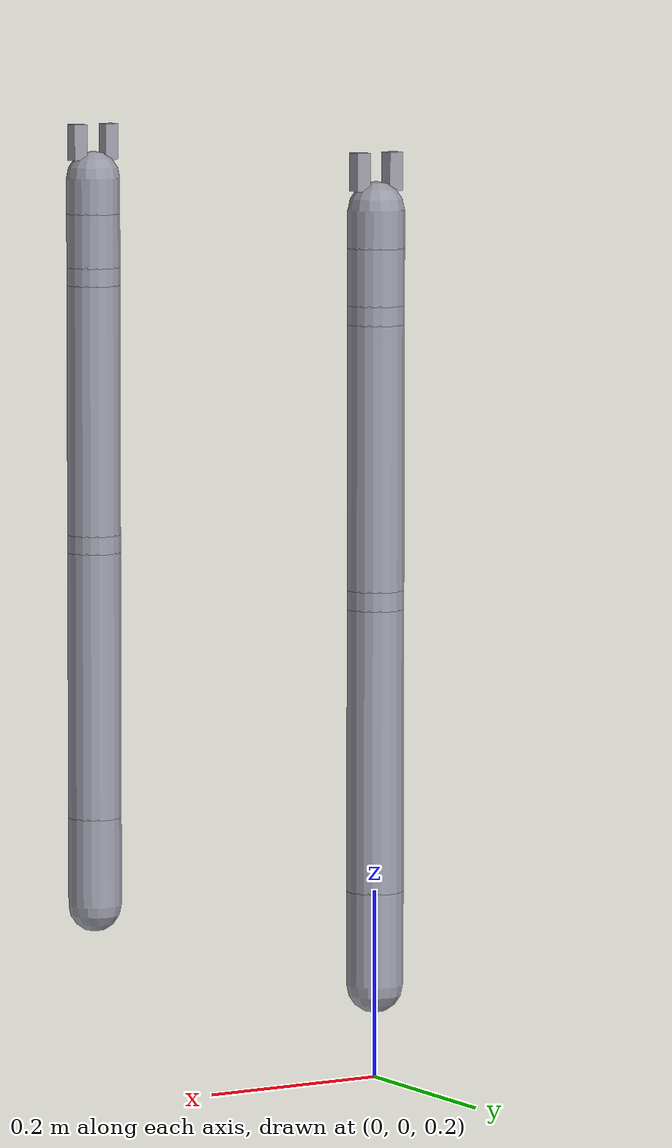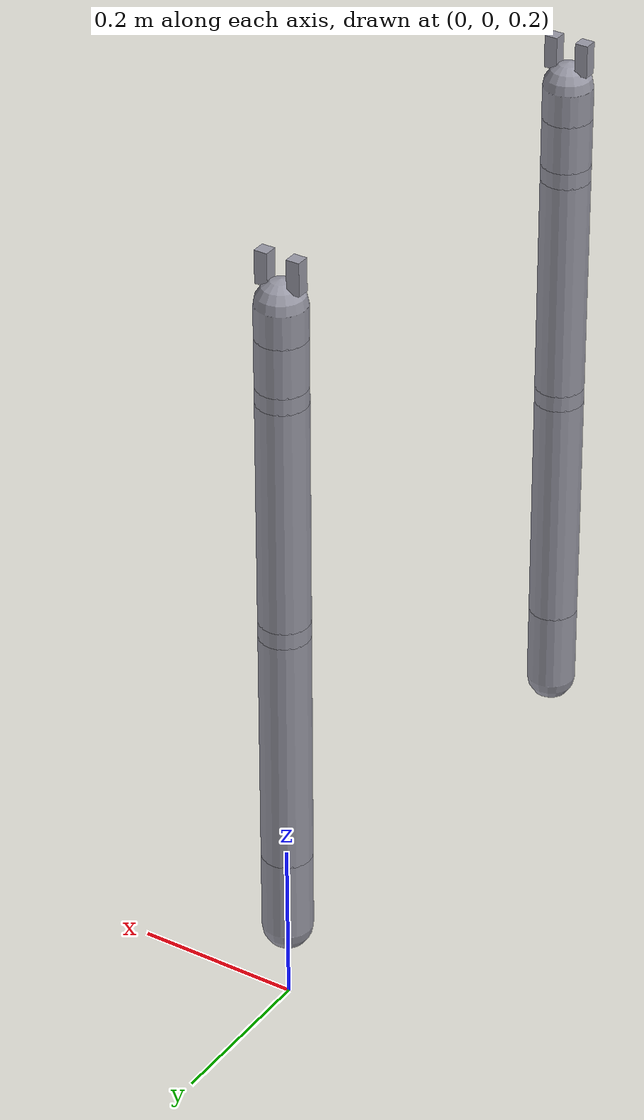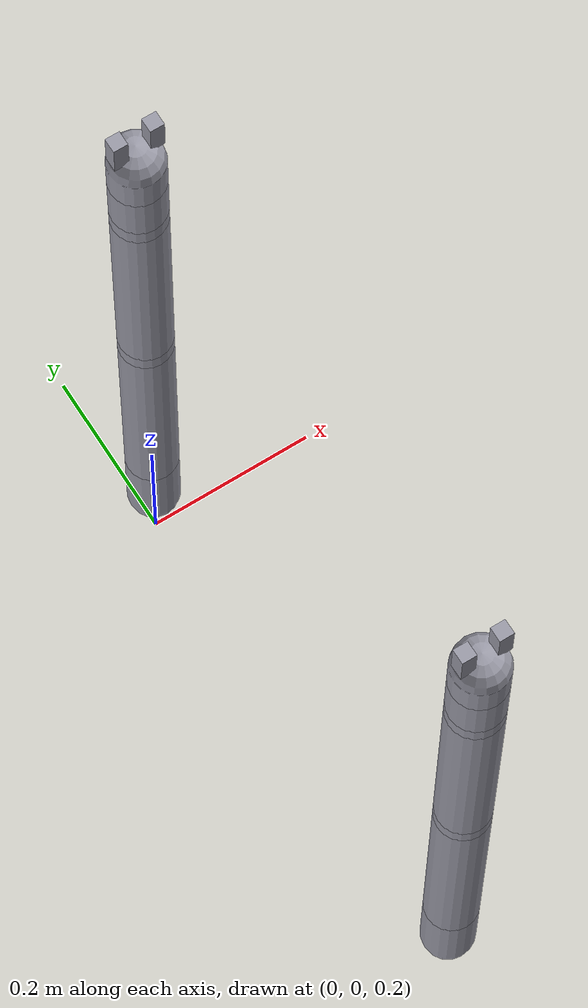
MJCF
<!-- Two independent seven-joint arms for servo and dual-controller regression checks. -->
<mujoco model="openarm test arm">
  <compiler angle="radian" />
  <option gravity="0 0 0" integrator="implicitfast" />
  <default>
    <joint type="hinge" limited="true" damping="1" />
    <geom type="capsule" size="0.03" rgba="0.6 0.6 0.65 1" />
    <position ctrllimited="true" kp="80" kv="8" />
  </default>
  <worldbody>
    <body name="openarm_right_link1" pos="0 0 0.30">
      <joint name="openarm_right_joint1" axis="0 0 1" range="-2.8 2.8" />
      <geom fromto="0 0 0 0 0 0.10" />
      <body name="openarm_right_link2" pos="0 0 0.10">
        <joint name="openarm_right_joint2" axis="0 1 0" range="-2.0 2.0" />
        <geom fromto="0 0 0 0 0 0.30" />
        <body name="openarm_right_link3" pos="0 0 0.30">
          <joint name="openarm_right_joint3" axis="0 0 1" range="-2.8 2.8" />
          <geom fromto="0 0 0 0 0 0.02" />
          <body name="openarm_right_link4" pos="0 0 0.02">
            <joint name="openarm_right_joint4" axis="0 1 0" range="-2.4 2.4" />
            <geom fromto="0 0 0 0 0 0.28" />
            <body name="openarm_right_link5" pos="0 0 0.28">
              <joint name="openarm_right_joint5" axis="0 0 1" range="-2.8 2.8" />
              <geom fromto="0 0 0 0 0 0.02" />
              <body name="openarm_right_link6" pos="0 0 0.02">
                <joint name="openarm_right_joint6" axis="0 1 0" range="-1.9 1.9" />
                <geom fromto="0 0 0 0 0 0.06" />
                <body name="openarm_right_link7" pos="0 0 0.06">
                  <joint name="openarm_right_joint7" axis="0 0 1" range="-2.8 2.8" />
                  <geom fromto="0 0 0 0 0 0.04" />
                  <body name="openarm_right_hand_tcp" pos="0 0 0.08">
                    <inertial pos="0 0 0" mass="0.05" diaginertia="1e-4 1e-4 1e-4" />
                    <body name="openarm_right_finger1" pos="0.02 0 0">
                      <joint name="openarm_right_finger_joint1" type="slide" axis="1 0 0" range="0 0.044" />
                      <geom type="box" size="0.008 0.008 0.02" />
                    </body>
                    <body name="openarm_right_finger2" pos="-0.02 0 0">
                      <joint name="openarm_right_finger_joint2" type="slide" axis="-1 0 0" range="0 0.044" />
                      <geom type="box" size="0.008 0.008 0.02" />
                    </body>
                  </body>
                </body>
              </body>
            </body>
          </body>
        </body>
      </body>
    </body>
    <body name="openarm_left_link1" pos="0 -0.6 0.30">
      <joint name="openarm_left_joint1" axis="0 0 1" range="-2.8 2.8" />
      <geom fromto="0 0 0 0 0 0.10" />
      <body name="openarm_left_link2" pos="0 0 0.10">
        <joint name="openarm_left_joint2" axis="0 1 0" range="-2.0 2.0" />
        <geom fromto="0 0 0 0 0 0.30" />
        <body name="openarm_left_link3" pos="0 0 0.30">
          <joint name="openarm_left_joint3" axis="0 0 1" range="-2.8 2.8" />
          <geom fromto="0 0 0 0 0 0.02" />
          <body name="openarm_left_link4" pos="0 0 0.02">
            <joint name="openarm_left_joint4" axis="0 1 0" range="-2.4 2.4" />
            <geom fromto="0 0 0 0 0 0.28" />
            <body name="openarm_left_link5" pos="0 0 0.28">
              <joint name="openarm_left_joint5" axis="0 0 1" range="-2.8 2.8" />
              <geom fromto="0 0 0 0 0 0.02" />
              <body name="openarm_left_link6" pos="0 0 0.02">
                <joint name="openarm_left_joint6" axis="0 1 0" range="-1.9 1.9" />
                <geom fromto="0 0 0 0 0 0.06" />
                <body name="openarm_left_link7" pos="0 0 0.06">
                  <joint name="openarm_left_joint7" axis="0 0 1" range="-2.8 2.8" />
                  <geom fromto="0 0 0 0 0 0.04" />
                  <body name="openarm_left_hand_tcp" pos="0 0 0.08">
                    <inertial pos="0 0 0" mass="0.05" diaginertia="1e-4 1e-4 1e-4" />
                    <body name="openarm_left_finger1" pos="0.02 0 0">
                      <joint name="openarm_left_finger_joint1" type="slide" axis="1 0 0" range="0 0.044" />
                      <geom type="box" size="0.008 0.008 0.02" />
                    </body>
                    <body name="openarm_left_finger2" pos="-0.02 0 0">
                      <joint name="openarm_left_finger_joint2" type="slide" axis="-1 0 0" range="0 0.044" />
                      <geom type="box" size="0.008 0.008 0.02" />
                    </body>
                  </body>
                </body>
              </body>
            </body>
          </body>
        </body>
      </body>
    </body>
  </worldbody>
  <actuator>
    <position name="openarm_right_joint1_position" joint="openarm_right_joint1" ctrlrange="-2.8 2.8" />
    <position name="openarm_right_joint2_position" joint="openarm_right_joint2" ctrlrange="-2.0 2.0" />
    <position name="openarm_right_joint3_position" joint="openarm_right_joint3" ctrlrange="-2.8 2.8" />
    <position name="openarm_right_joint4_position" joint="openarm_right_joint4" ctrlrange="-2.4 2.4" />
    <position name="openarm_right_joint5_position" joint="openarm_right_joint5" ctrlrange="-2.8 2.8" />
    <position name="openarm_right_joint6_position" joint="openarm_right_joint6" ctrlrange="-1.9 1.9" />
    <position name="openarm_right_joint7_position" joint="openarm_right_joint7" ctrlrange="-2.8 2.8" />
    <position name="openarm_right_finger_joint1_position" joint="openarm_right_finger_joint1" ctrlrange="0 0.044" kp="100" kv="5" />
    <position name="openarm_right_finger_joint2_position" joint="openarm_right_finger_joint2" ctrlrange="0 0.044" kp="100" kv="5" />
    <position name="openarm_left_joint1_position" joint="openarm_left_joint1" ctrlrange="-2.8 2.8" />
    <position name="openarm_left_joint2_position" joint="openarm_left_joint2" ctrlrange="-2.0 2.0" />
    <position name="openarm_left_joint3_position" joint="openarm_left_joint3" ctrlrange="-2.8 2.8" />
    <position name="openarm_left_joint4_position" joint="openarm_left_joint4" ctrlrange="-2.4 2.4" />
    <position name="openarm_left_joint5_position" joint="openarm_left_joint5" ctrlrange="-2.8 2.8" />
    <position name="openarm_left_joint6_position" joint="openarm_left_joint6" ctrlrange="-1.9 1.9" />
    <position name="openarm_left_joint7_position" joint="openarm_left_joint7" ctrlrange="-2.8 2.8" />
    <position name="openarm_left_finger_joint1_position" joint="openarm_left_finger_joint1" ctrlrange="0 0.044" kp="100" kv="5" />
    <position name="openarm_left_finger_joint2_position" joint="openarm_left_finger_joint2" ctrlrange="0 0.044" kp="100" kv="5" />
  </actuator>
  <keyframe>
    <key name="home" qpos="0 0.3 0 0.6 0 0.3 0 0.02 0.02 0 0.3 0 0.6 0 0.3 0 0.02 0.02" ctrl="0 0.3 0 0.6 0 0.3 0 0.02 0.02 0 0.3 0 0.6 0 0.3 0 0.02 0.02" />
  </keyframe>
</mujoco>
